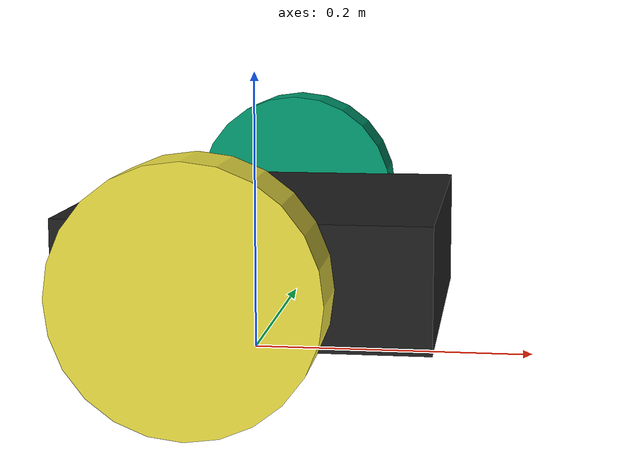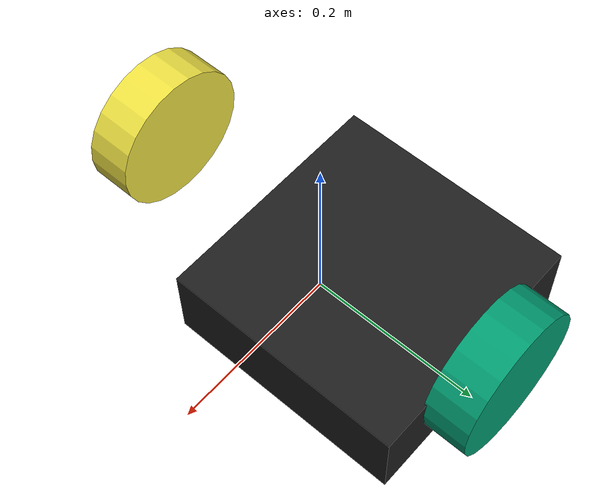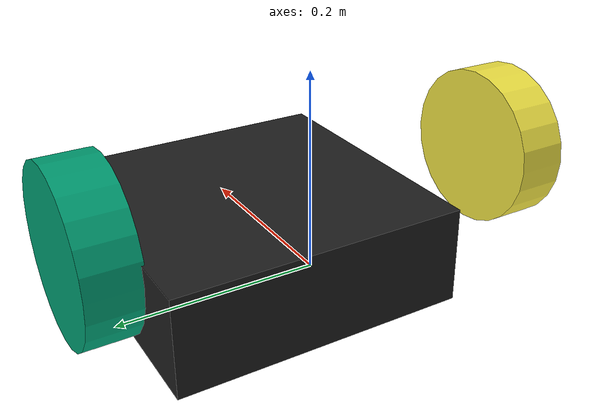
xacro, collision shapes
<?xml version="1.0" ?>
<robot name="zetabank" xmlns:xacro="http://ros.org/wiki/xacro">
  <xacro:include filename="$(find zetabank_description)/urdf/common_properties.xacro"/>

  <link name="base_footprint"/>

  <joint name="base_joint" type="fixed">
    <parent link="base_footprint"/>
    <child link="base_link" />
    <origin xyz="0 0 0.010" rpy="0 0 0"/>
  </joint>

  <link name="base_link">
    <visual>
      <origin xyz="-0 -0.33 0.0" rpy="0 0 ${M_PI*0.5}"/>
      <geometry>
        <mesh filename="package://zetabank_description/meshes/zetabank.STL" scale="1 1 1"/>
      </geometry>
      <material name="light_black"/>
    </visual>
    <collision>
      <origin xyz="0 0.064  0.048" rpy="0 0 0"/>
      <geometry>
        <box size="0.265 0.265 0.089"/>
      </geometry>
    </collision>
    <inertial>
      <origin xyz="0 0.064 0" rpy="0 0 0"/>
      <mass value="0.01"/>
      <inertia ixx="8.7002718e-03" ixy="-4.7576583e-05" ixz="1.1160499e-04"
               iyy="8.6195418e-03" iyz="-3.5422299e-06"
               izz="1.4612727e-02" />
    </inertial>

  </link>

<joint name="wheel_left_joint" type="continuous">
    <parent link="base_link"/>
    <child link="wheel_left_link"/>
    <origin xyz="0.0 0.219 0.075" rpy="${-M_PI*0.5} 0 0"/>
    <axis xyz="0 0 1"/>
  </joint>

  <link name="wheel_left_link">
    <collision>
      <origin rpy="0 0 0" xyz="0 0 0"/>
      <geometry>
        <cylinder length="0.050" radius="0.0812"/>
      </geometry>
    </collision>
    <inertial>
      <origin xyz="0 0 0" />
      <mass value="2.8498940e-02" />
      <inertia ixx="1.1175580e-05" ixy="-4.2369783e-11" ixz="-5.9381719e-09"
               iyy="1.1192413e-05" iyz="-1.4400107e-11"
               izz="2.0712558e-05" />
      </inertial>
  </link>

  <joint name="wheel_right_joint" type="continuous">
    <parent link="base_link"/>
    <child link="wheel_right_link"/>
    <origin xyz="0.0 -0.219 0.075" rpy="${-M_PI*0.5} 0 0"/>
    <axis xyz="0 0 1"/>
  </joint>

  <link name="wheel_right_link">
    <collision>
      <origin rpy="0 0 0" xyz="0 0 0"/>
      <geometry>
        <cylinder length="0.050" radius="0.0812"/>
      </geometry>
    </collision>
    <inertial>
      <origin xyz="0 0 0" />
      <mass value="2.8498940e-02" />
      <inertia ixx="1.1175580e-05" ixy="-4.2369783e-11" ixz="-5.9381719e-09"
               iyy="1.1192413e-05" iyz="-1.4400107e-11"
               izz="2.0712558e-05" />
      </inertial>
  </link>

  <joint name="imu_joint" type="fixed">
    <parent link="base_link"/>
    <child link="imu_link"/>
    <origin xyz="-0.0954 -0.038 0.0" rpy="0 0 0"/>
  </joint>

  <link name="imu_link"/>

  <joint name="lidar_joint" type="fixed">
    <parent link="base_link"/>
    <child link="lidar_link"/>
    <origin xyz="0.1725 0.0 0.15556" rpy="0 ${-M_PI} ${-M_PI}"/>
  </joint>
  <link name="lidar_link"/>
    <joint name="lidar_joint_1" type="fixed">
    <parent link="base_link"/>
    <child link="lidar_link_1"/>
    <origin xyz="0.1725 0.0 0.15556" rpy="0 0 0"/>
  </joint>
  <link name="lidar_link_1"/>
    <joint name="lidar_joint_2" type="fixed">
    <parent link="base_link"/>
    <child link="lidar_link_2"/>
    <origin xyz="0.1725 0.0 0.15" rpy="0 0 0"/>
  </joint>
  <link name="lidar_link_2"/>
    <joint name="camera_joint_1" type="fixed">
    <parent link="base_link"/>
    <child link="camera_1_depth"/>
    <origin xyz="0.231 0.073 0.15" rpy="0 0 ${M_PI*0.3722}"/>
  </joint>
  <link name="camera_1_depth"/>
    <joint name="camera_joint_2" type="fixed">
    <parent link="base_link"/>
    <child link="camera_2_depth"/>
    <origin xyz="0.231 -0.073 0.15" rpy="0 0 ${-M_PI*0.3722}"/>
  </joint>
  <link name="camera_2_depth"/>

</robot>
